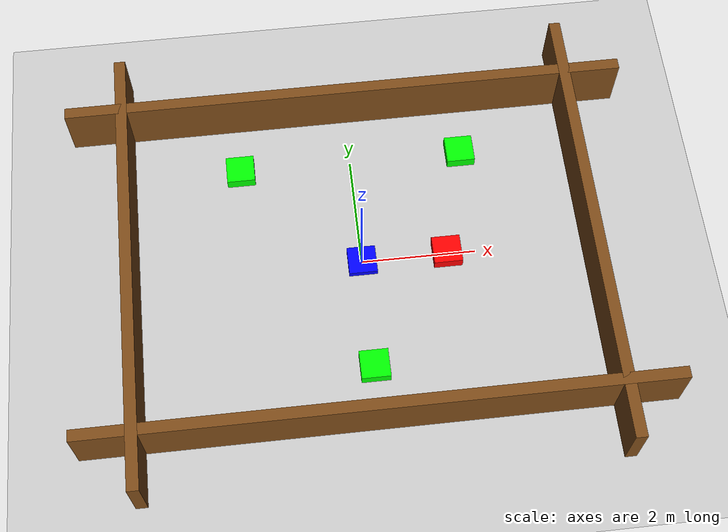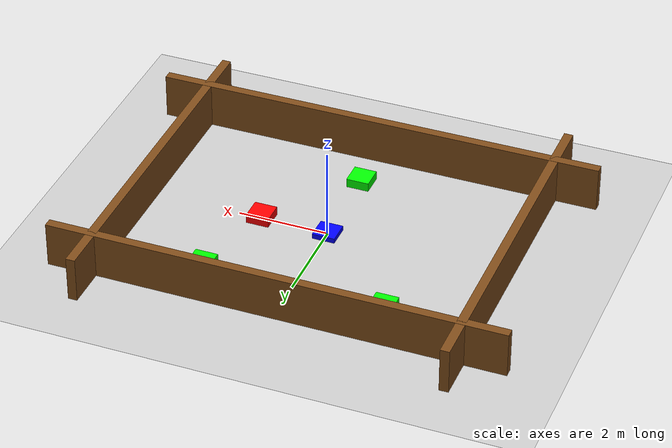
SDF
<?xml version="1.0" ?>
<sdf version="1.6">
  <world name="cafe_world">

    <!-- Light -->
    <include>
      <uri>model://sun</uri>
    </include>

    <!-- Ground -->
    <include>
      <uri>model://ground_plane</uri>
    </include>

    <!-- ========== WALLS (Cafe boundary) ========== -->
    <model name="wall_north">
      <static>true</static>
      <pose>0 3 0.5 0 0 0</pose>
      <link name="link">
        <collision name="col"><geometry><box><size>10 0.2 1</size></box></geometry></collision>
        <visual name="vis"><geometry><box><size>10 0.2 1</size></box></geometry>
          <material><ambient>0.5 0.3 0.1 1</ambient></material>
        </visual>
      </link>
    </model>

    <model name="wall_south">
      <static>true</static>
      <pose>0 -3 0.5 0 0 0</pose>
      <link name="link">
        <collision name="col"><geometry><box><size>10 0.2 1</size></box></geometry></collision>
        <visual name="vis"><geometry><box><size>10 0.2 1</size></box></geometry>
          <material><ambient>0.5 0.3 0.1 1</ambient></material>
        </visual>
      </link>
    </model>

    <model name="wall_east">
      <static>true</static>
      <pose>4 0 0.5 0 0 0</pose>
      <link name="link">
        <collision name="col"><geometry><box><size>0.2 8 1</size></box></geometry></collision>
        <visual name="vis"><geometry><box><size>0.2 8 1</size></box></geometry>
          <material><ambient>0.5 0.3 0.1 1</ambient></material>
        </visual>
      </link>
    </model>

    <model name="wall_west">
      <static>true</static>
      <pose>-4 0 0.5 0 0 0</pose>
      <link name="link">
        <collision name="col"><geometry><box><size>0.2 8 1</size></box></geometry></collision>
        <visual name="vis"><geometry><box><size>0.2 8 1</size></box></geometry>
          <material><ambient>0.5 0.3 0.1 1</ambient></material>
        </visual>
      </link>
    </model>

    <!-- ========== HOME (Blue box) ========== -->
    <model name="home">
      <static>true</static>
      <pose>0 0 0.0 0 0 0</pose>
      <link name="link">
        <collision name="col"><geometry><box><size>0.5 0.5 0.2</size></box></geometry></collision>
        <visual name="vis"><geometry><box><size>0.5 0.5 0.2</size></box></geometry>
          <material><ambient>0 0 1 1</ambient></material>
        </visual>
      </link>
    </model>

    <!-- ========== KITCHEN (Red box) ========== -->
    <model name="kitchen">
      <static>true</static>
      <pose>1.5 0 0.1 0 0 0</pose>
      <link name="link">
        <collision name="col"><geometry><box><size>0.5 0.5 0.2</size></box></geometry></collision>
        <visual name="vis"><geometry><box><size>0.5 0.5 0.2</size></box></geometry>
          <material><ambient>1 0 0 1</ambient></material>
        </visual>
      </link>
    </model>

    <!-- ========== TABLE 1 (Green box) ========== -->
    <model name="table1">
      <static>true</static>
      <pose>2 2 0.1 0 0 0</pose>
      <link name="link">
        <collision name="col"><geometry><box><size>0.5 0.5 0.2</size></box></geometry></collision>
        <visual name="vis"><geometry><box><size>0.5 0.5 0.2</size></box></geometry>
          <material><ambient>0 1 0 1</ambient></material>
        </visual>
      </link>
    </model>

    <!-- ========== TABLE 2 (Green box) ========== -->
    <model name="table2">
      <static>true</static>
      <pose>-2 2 0.1 0 0 0</pose>
      <link name="link">
        <collision name="col"><geometry><box><size>0.5 0.5 0.2</size></box></geometry></collision>
        <visual name="vis"><geometry><box><size>0.5 0.5 0.2</size></box></geometry>
          <material><ambient>0 1 0 1</ambient></material>
        </visual>
      </link>
    </model>

    <!-- ========== TABLE 3 (Green box) ========== -->
    <model name="table3">
      <static>true</static>
      <pose>0 -2 0.1 0 0 0</pose>
      <link name="link">
        <collision name="col"><geometry><box><size>0.5 0.5 0.2</size></box></geometry></collision>
        <visual name="vis"><geometry><box><size>0.5 0.5 0.2</size></box></geometry>
          <material><ambient>0 1 0 1</ambient></material>
        </visual>
      </link>
    </model>

  </world>
</sdf>
```

Save and close the file.

---

## Step 3: What Each Color Means
```
🔵 BLUE box  = HOME     (0.0,  0.0)
🔴 RED box   = KITCHEN  (1.5,  0.0)
🟢 GREEN box = TABLE 1  (2.0,  2.0)
🟢 GREEN box = TABLE 2  (-2.0, 2.0)
🟢 GREEN box = TABLE 3  (0.0, -2.0)
